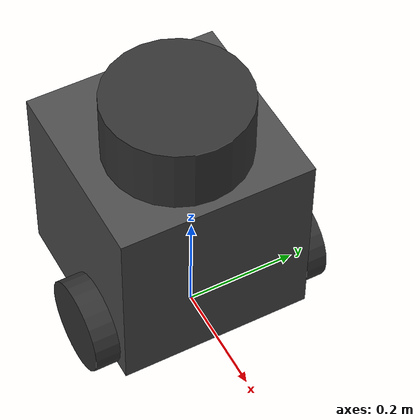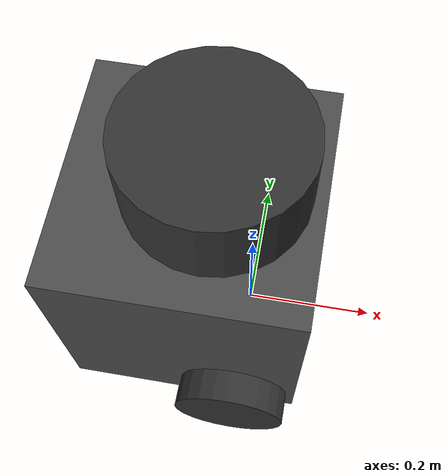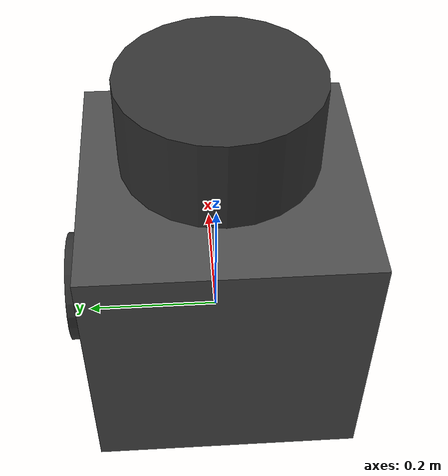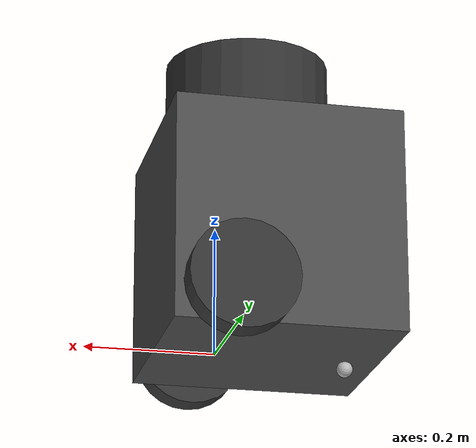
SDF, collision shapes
<?xml version="1.0" ?>
<sdf version="1.8">
  <model name="turtlebot3_burger_cam">
    <pose>0.0 0.0 0.0 0.0 0.0 0.0</pose>

    <link name="base_footprint"/>

    <link name="base_link">

      <inertial>
        <pose>-0.080 0 0.175 0 0 0</pose>
        <inertia>
          <ixx>0.3</ixx>
          <ixy>0.0</ixy>
          <ixz>0.0</ixz>
          <iyy>0.3</iyy>
          <iyz>0.0</iyz>
          <izz>0.3</izz>
        </inertia>
        <mass>12.9</mass>
      </inertial>

      <collision name="base_collision">
        <pose>-0.080 0 0.175 0 0 0</pose>
        <geometry>
          <box>
            <size>0.350 0.350 0.350</size>
          </box>
        </geometry>
      </collision>

      <visual name="base_visual">
        <pose>-0.080 0 0 0 0 0</pose>
        <geometry>
          <mesh>
            <uri>model://turtlebot3_common/meshes/bases/burger_base.stl</uri>
            <scale>0.0025 0.0025 0.0025</scale>
          </mesh>
        </geometry>
        <material>
          <ambient>0.3 0.3 0.3 1.0</ambient>
          <diffuse>0.3 0.3 0.3 1.0</diffuse>
        </material>
      </visual>
    </link>

    <link name="imu_link">
      <sensor name="tb3_imu" type="imu">
        <always_on>true</always_on>
        <update_rate>200</update_rate>
        <topic>imu</topic>
        <imu>
          <angular_velocity>
            <x>
              <noise type="gaussian">
                <mean>0.0</mean>
                <stddev>2e-4</stddev>
              </noise>
            </x>
            <y>
              <noise type="gaussian">
                <mean>0.0</mean>
                <stddev>2e-4</stddev>
              </noise>
            </y>
            <z>
              <noise type="gaussian">
                <mean>0.0</mean>
                <stddev>2e-4</stddev>
              </noise>
            </z>
          </angular_velocity>
          <linear_acceleration>
            <x>
              <noise type="gaussian">
                <mean>0.0</mean>
                <stddev>1.7e-2</stddev>
              </noise>
            </x>
            <y>
              <noise type="gaussian">
                <mean>0.0</mean>
                <stddev>1.7e-2</stddev>
              </noise>
            </y>
            <z>
              <noise type="gaussian">
                <mean>0.0</mean>
                <stddev>1.7e-2</stddev>
              </noise>
            </z>
          </linear_acceleration>
        </imu>
      </sensor>
    </link>

    <link name="base_scan">
      <inertial>
        <pose>-0.050 0 0.4025 0 0 0</pose>
        <inertia>
          <ixx>0.09765</ixx>
          <ixy>0.000</ixy>
          <ixz>0.000</ixz>
          <iyy>0.09765</iyy>
          <iyz>0.000</iyz>
          <izz>0.09765</izz>
        </inertia>
        <mass>1.78125</mass>
      </inertial>

      <collision name="lidar_sensor_collision">
        <pose>-0.050 0 0.4025 0 0 0</pose>
        <geometry>
          <cylinder>
            <radius>0.1270</radius>
            <length>0.1375</length>
          </cylinder>
        </geometry>
      </collision>

      <visual name="lidar_sensor_visual">
        <pose>-0.080 0 0.4275 0 0 0</pose>
        <geometry>
          <mesh>
            <uri>model://turtlebot3_common/meshes/sensors/lds.stl</uri>
            <scale>0.0025 0.0025 0.0025</scale>
          </mesh>
        </geometry>
        <material>
          <ambient>0.2 0.2 0.2 1.0</ambient>
          <diffuse>0.2 0.2 0.2 1.0</diffuse>
        </material>
      </visual>

      <sensor name="hls_lfcd_lds" type="gpu_lidar">
        <always_on>true</always_on>
        <visualize>false</visualize>
        <pose>-0.080 0 0.4275 0 0 0</pose>
        <update_rate>5</update_rate>
        <topic>scan</topic>
        <gz_frame_id>base_scan</gz_frame_id>
        <lidar>
          <scan>
            <horizontal>
              <samples>360</samples>
              <resolution>1.000000</resolution>
              <min_angle>0.000000</min_angle>
              <max_angle>6.280000</max_angle>
            </horizontal>
          </scan>
          <range>
            <min>0.120000</min>
            <max>3.5</max>
            <resolution>0.015000</resolution>
          </range>
          <noise>
            <type>gaussian</type>
            <mean>0.0</mean>
            <stddev>0.01</stddev>
          </noise>
        </lidar>
      </sensor>
    </link>

    <link name="wheel_left_link">

      <inertial>
        <pose>0 0.20 0.0575 -1.57 0 0</pose>
        <inertia>
          <ixx>0.001</ixx>
          <ixy>0.0</ixy>
          <ixz>0.0</ixz>
          <iyy>0.002</iyy>
          <iyz>0.0</iyz>
          <izz>0.001</izz>
        </inertia>
        <mass>0.445</mass>
      </inertial>

      <collision name="wheel_left_collision">
        <pose>0 0.20 0.0575 -1.57 0 0</pose>
        <geometry>
          <cylinder>
            <radius>0.0825</radius>
            <length>0.045</length>
          </cylinder>
        </geometry>
        <surface>
          <friction>
            <ode>
              <mu>1.0</mu>
              <mu2>1.0</mu2>
              <fdir1>0 0 1</fdir1>
              <slip1>0.0</slip1>
              <slip2>0.0</slip2>
            </ode>
          </friction>
          <contact>
            <ode>
              <soft_cfm>0</soft_cfm>
              <soft_erp>0.2</soft_erp>
              <kp>1e7</kp>
              <kd>100</kd>
              <max_vel>0.01</max_vel>
              <min_depth>0.001</min_depth>
            </ode>
          </contact>
        </surface>
      </collision>

      <visual name="wheel_left_visual">
        <pose>0 0.20 0.0575 0 0 0</pose>
        <geometry>
          <mesh>
            <uri>model://turtlebot3_common/meshes/wheels/left_tire.stl</uri>
            <scale>0.0025 0.0025 0.0025</scale>
          </mesh>
        </geometry>
        <material>
          <ambient>0.2 0.2 0.2 1.0</ambient>
          <diffuse>0.2 0.2 0.2 1.0</diffuse>
        </material>
      </visual>
    </link>

    <link name="wheel_right_link">

      <inertial>
        <pose>0 -0.20 0.0575 -1.57 0 0</pose>
        <inertia>
          <ixx>0.001</ixx>
          <ixy>0.0</ixy>
          <ixz>0.0</ixz>
          <iyy>0.002</iyy>
          <iyz>0.0</iyz>
          <izz>0.001</izz>
        </inertia>
        <mass>0.445</mass>
      </inertial>

      <collision name="wheel_right_collision">
        <pose>0 -0.20 0.0575 -1.57 0 0</pose>
        <geometry>
          <cylinder>
            <radius>0.0825</radius>
            <length>0.045</length>
          </cylinder>
        </geometry>
        <surface>
          <friction>
            <ode>
              <mu>1.0</mu>
              <mu2>1.0</mu2>
              <fdir1>0 0 1</fdir1>
              <slip1>0.0</slip1>
              <slip2>0.0</slip2>
            </ode>
          </friction>
          <contact>
            <ode>
              <soft_cfm>0</soft_cfm>
              <soft_erp>0.2</soft_erp>
              <kp>1e7</kp>
              <kd>100</kd>
              <max_vel>0.01</max_vel>
              <min_depth>0.001</min_depth>
            </ode>
          </contact>
        </surface>
      </collision>

      <visual name="wheel_right_visual">
        <pose>0 -0.20 0.0575 0 0 0</pose>
        <geometry>
          <mesh>
            <uri>model://turtlebot3_common/meshes/wheels/right_tire.stl</uri>
            <scale>0.0025 0.0025 0.0025</scale>
          </mesh>
        </geometry>
        <material>
          <ambient>0.2 0.2 0.2 1.0</ambient>
          <diffuse>0.2 0.2 0.2 1.0</diffuse>
        </material>
      </visual>
    </link>

    <link name='caster_back_link'>
      <pose>-0.2025 0 -0.010 -1.57 0 0</pose>
      <inertial>
        <mass>0.078125</mass>
        <inertia>
          <ixx>0.09765</ixx>
          <ixy>0.000</ixy>
          <ixz>0.000</ixz>
          <iyy>0.09765</iyy>
          <iyz>0.000</iyz>
          <izz>0.09765</izz>
        </inertia>
      </inertial>
      <collision name='collision'>
        <geometry>
          <sphere>
            <radius>0.0125</radius>
          </sphere>
        </geometry>
        <surface>
          <contact>
            <ode>
              <soft_cfm>0</soft_cfm>
              <soft_erp>0.2</soft_erp>
              <kp>1e+5</kp>
              <kd>1</kd>
              <max_vel>0.01</max_vel>
              <min_depth>0.001</min_depth>
            </ode>
          </contact>
        </surface>
      </collision>
    </link>

    <link name="camera_link">

      <inertial>
        <pose>0.190 0.0 0.2325 0 0 0</pose>
        <inertia>
          <ixx>0.09765</ixx>
          <ixy>0.000</ixy>
          <ixz>0.000</ixz>
          <iyy>0.09765</iyy>
          <iyz>0.000</iyz>
          <izz>0.09765</izz>
        </inertia>
        <mass>0.546875</mass>
      </inertial>

      <pose>0.190 0.0 0.2325 0 0 0</pose>
      <sensor name="camera" type="wideanglecamera">
        <always_on>true</always_on>
        <visualize>true</visualize>
        <update_rate>30</update_rate>
        <topic>camera/image_raw</topic>
        <gz_frame_id>camera_rgb_frame</gz_frame_id>
        <camera name="pi_cam">
          <camera_info_topic>camera/camera_info</camera_info_topic>
          <horizontal_fov>3.183</horizontal_fov>
          <image>
            <width>320</width>
            <height>240</height>
            <format>R8G8B8</format>
          </image>
          <clip>
            <near>0.03</near>
            <far>100</far>
          </clip>
          <lens>
            <type>custom</type>
            <custom_function>
              <c1>1.05</c1>
              <c2>4</c2>
              <f>1.0</f>
              <fun>tan</fun>
            </custom_function>
            <scale_to_hfov>true</scale_to_hfov>
            <cutoff_angle>3.1415</cutoff_angle>
            <env_texture_size>512</env_texture_size>
          </lens>
        </camera>
      </sensor>
    </link>

    <joint name="base_joint" type="fixed">
      <parent>base_footprint</parent>
      <child>base_link</child>
      <pose>0.0 0.0 0.025 0 0 0</pose>
    </joint>

    <joint name="wheel_left_joint" type="revolute">
      <parent>base_link</parent>
      <child>wheel_left_link</child>
      <pose>0 0.20 0.0575 -1.57 0 0</pose>
      <axis>
        <xyz>0 0 1</xyz>
        <limit>
          <effort>100</effort>
        </limit>
      </axis>
    </joint>

    <joint name="wheel_right_joint" type="revolute">
      <parent>base_link</parent>
      <child>wheel_right_link</child>
      <pose>0 -0.20 0.0575 -1.57 0 0</pose>
      <axis>
        <xyz>0 0 1</xyz>
        <limit>
          <effort>100</effort>
        </limit>
      </axis>
    </joint>

    <joint name='caster_back_joint' type='ball'>
      <parent>base_link</parent>
      <child>caster_back_link</child>
    </joint>

    <joint name="imu_joint" type="fixed">
      <parent>base_link</parent>
      <child>imu_link</child>
      <pose>-0.080 0 0.170 0 0 0</pose>
      <axis>
        <xyz>0 0 1</xyz>
      </axis>
    </joint>

    <joint name="lidar_joint" type="fixed">
      <parent>base_link</parent>
      <child>base_scan</child>
      <pose>-0.080 0 0.4275 0 0 0</pose>
      <axis>
        <xyz>0 0 1</xyz>
      </axis>
    </joint>

    <joint name="camera_joint" type="fixed">
      <parent>base_link</parent>
      <child>camera_link</child>
      <pose>0.100 -0.000 0.275 0 0 0</pose>
      <axis>
        <xyz>0 0 1</xyz>
      </axis>
    </joint>

    <plugin filename="gz-sim-diff-drive-system" name="gz::sim::systems::DiffDrive">
      <left_joint>wheel_left_joint</left_joint>
      <right_joint>wheel_right_joint</right_joint>
      <wheel_separation>0.400</wheel_separation>
      <wheel_radius>0.0825</wheel_radius>
      <max_linear_acceleration>1.0</max_linear_acceleration>
      <topic>cmd_vel</topic>
      <odom_topic>odom</odom_topic>
      <frame_id>odom</frame_id>
      <child_frame_id>base_footprint</child_frame_id>
      <odom_publisher_frequency>30</odom_publisher_frequency>
      <tf_topic>/tf</tf_topic>
    </plugin>

    <plugin filename="gz-sim-joint-state-publisher-system" name="gz::sim::systems::JointStatePublisher">
      <topic>joint_states</topic>
      <joint_name>wheel_left_joint</joint_name>
      <joint_name>wheel_right_joint</joint_name>
    </plugin>

  </model>
</sdf>
